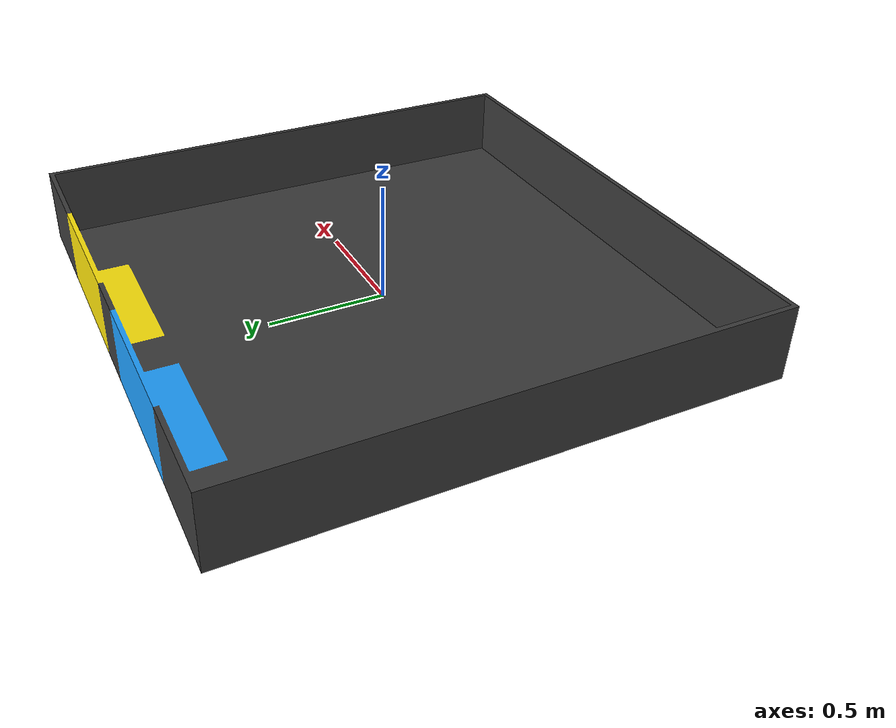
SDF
<?xml version="1.0" ?>
<sdf version="1.5">
  <model name='eco_disaster_arena'>
    <link name='link'>
      <visual name='visual'>
        <geometry>
          <mesh>
            <uri>meshes/Eco_Disaster_Arena.dae</uri>
          </mesh>
        </geometry>
      </visual>

      <collision name='collision'>
        <geometry>
          <mesh>
            <uri>meshes/Eco_Disaster_Arena.dae</uri>
          </mesh>
        </geometry>
        <surface>
        <friction>
          <ode>
            <mu>0.6</mu>
            <mu2>0.6</mu2>
          </ode>
        </friction>
      </surface>
      </collision>

      <pose>0 0 0 0 -0 0</pose>
      <inertial>
        <pose>0 0 0 0 -0 0</pose>
        <mass>1</mass>
        <inertia>
          <ixx>1</ixx>
          <ixy>0</ixy>
          <ixz>0</ixz>
          <iyy>1</iyy>
          <iyz>0</iyz>
          <izz>1</izz>
        </inertia>
      </inertial>
      <enable_wind>false</enable_wind>
    </link>
    <static>true</static>
    <self_collide>false</self_collide>
  </model>
</sdf>
